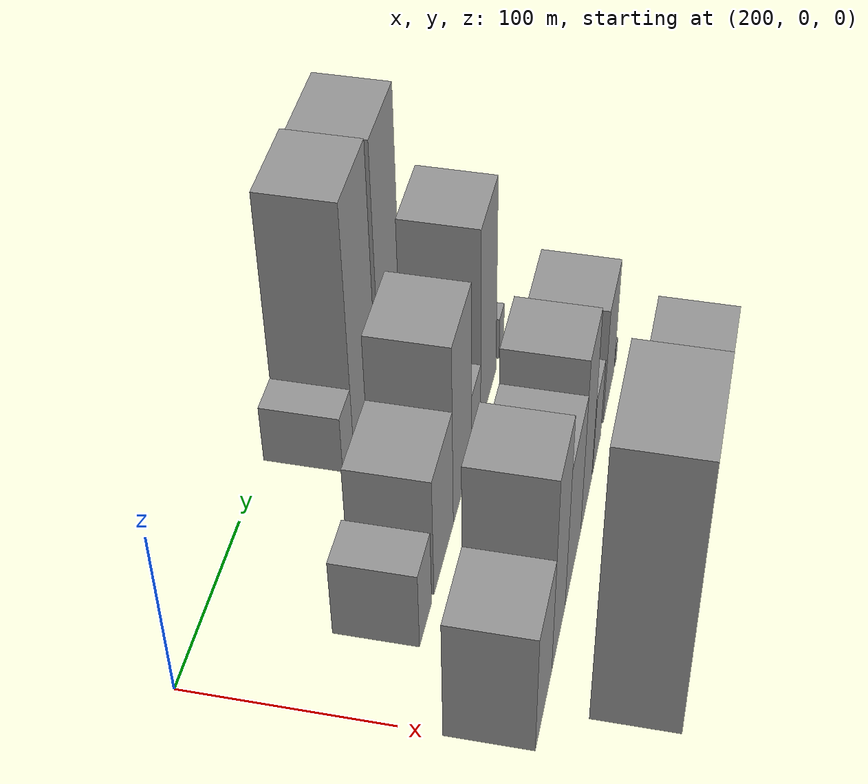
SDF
<sdf version="1.6">
 <world name="default">
  <model name="building_149">
   <static>1</static>
   <pose>220.0000 151.2144 0 0.000000 0.000000 0.000000</pose>
   <link name="link">
    <pose>0 0 18.00 0 0 0</pose>
    <collision name="collision"><geometry><box><size>40.0000 20.9111 36.0000</size></box></geometry></collision>
    <visual name="visual">
     <cast_shadows>0</cast_shadows>
     <geometry><box><size>40.0000 20.9111 36.0000</size></box></geometry>
     <material>
      <script>
       <uri>model://grey_wall/materials/scripts</uri>
       <uri>model://grey_wall/materials/textures</uri>
       <name>vrc/grey_wall</name>
      </script>
     </material>
    </visual>
   </link>
  </model>
  <model name="building_150">
   <static>1</static>
   <pose>220.0000 185.9614 0 0.000000 0.000000 0.000000</pose>
   <link name="link">
    <pose>0 0 75.00 0 0 0</pose>
    <collision name="collision"><geometry><box><size>40.0000 48.5829 150.0000</size></box></geometry></collision>
    <visual name="visual">
     <cast_shadows>0</cast_shadows>
     <geometry><box><size>40.0000 48.5829 150.0000</size></box></geometry>
     <material>
      <script>
       <uri>model://grey_wall/materials/scripts</uri>
       <uri>model://grey_wall/materials/textures</uri>
       <name>vrc/grey_wall</name>
      </script>
     </material>
    </visual>
   </link>
  </model>
  <model name="building_151">
   <static>1</static>
   <pose>220.0000 241.5914 0 0.000000 0.000000 0.000000</pose>
   <link name="link">
    <pose>0 0 72.00 0 0 0</pose>
    <collision name="collision"><geometry><box><size>40.0000 48.6770 144.0000</size></box></geometry></collision>
    <visual name="visual">
     <cast_shadows>0</cast_shadows>
     <geometry><box><size>40.0000 48.6770 144.0000</size></box></geometry>
     <material>
      <script>
       <uri>model://grey_wall/materials/scripts</uri>
       <uri>model://grey_wall/materials/textures</uri>
       <name>vrc/grey_wall</name>
      </script>
     </material>
    </visual>
   </link>
  </model>
  <model name="building_200">
   <static>1</static>
   <pose>280.0000 56.0909 0 0.000000 0.000000 0.000000</pose>
   <link name="link">
    <pose>0 0 24.00 0 0 0</pose>
    <collision name="collision"><geometry><box><size>40.0000 25.5975 48.0000</size></box></geometry></collision>
    <visual name="visual">
     <cast_shadows>0</cast_shadows>
     <geometry><box><size>40.0000 25.5975 48.0000</size></box></geometry>
     <material>
      <script>
       <uri>model://grey_wall/materials/scripts</uri>
       <uri>model://grey_wall/materials/textures</uri>
       <name>vrc/grey_wall</name>
      </script>
     </material>
    </visual>
   </link>
  </model>
  <model name="building_201">
   <static>1</static>
   <pose>280.0000 95.7626 0 0.000000 0.000000 0.000000</pose>
   <link name="link">
    <pose>0 0 37.50 0 0 0</pose>
    <collision name="collision"><geometry><box><size>40.0000 43.7458 75.0000</size></box></geometry></collision>
    <visual name="visual">
     <cast_shadows>0</cast_shadows>
     <geometry><box><size>40.0000 43.7458 75.0000</size></box></geometry>
     <material>
      <script>
       <uri>model://grey_wall/materials/scripts</uri>
       <uri>model://grey_wall/materials/textures</uri>
       <name>vrc/grey_wall</name>
      </script>
     </material>
    </visual>
   </link>
  </model>
  <model name="building_202">
   <static>1</static>
   <pose>280.0000 139.8098 0 0.000000 0.000000 0.000000</pose>
   <link name="link">
    <pose>0 0 57.00 0 0 0</pose>
    <collision name="collision"><geometry><box><size>40.0000 44.3487 114.0000</size></box></geometry></collision>
    <visual name="visual">
     <cast_shadows>0</cast_shadows>
     <geometry><box><size>40.0000 44.3487 114.0000</size></box></geometry>
     <material>
      <script>
       <uri>model://grey_wall/materials/scripts</uri>
       <uri>model://grey_wall/materials/textures</uri>
       <name>vrc/grey_wall</name>
      </script>
     </material>
    </visual>
   </link>
  </model>
  <model name="building_203">
   <static>1</static>
   <pose>280.0000 173.4415 0 0.000000 0.000000 0.000000</pose>
   <link name="link">
    <pose>0 0 21.00 0 0 0</pose>
    <collision name="collision"><geometry><box><size>40.0000 22.9148 42.0000</size></box></geometry></collision>
    <visual name="visual">
     <cast_shadows>0</cast_shadows>
     <geometry><box><size>40.0000 22.9148 42.0000</size></box></geometry>
     <material>
      <script>
       <uri>model://grey_wall/materials/scripts</uri>
       <uri>model://grey_wall/materials/textures</uri>
       <name>vrc/grey_wall</name>
      </script>
     </material>
    </visual>
   </link>
  </model>
  <model name="building_204">
   <static>1</static>
   <pose>280.0000 205.6495 0 0.000000 0.000000 0.000000</pose>
   <link name="link">
    <pose>0 0 63.00 0 0 0</pose>
    <collision name="collision"><geometry><box><size>40.0000 41.5011 126.0000</size></box></geometry></collision>
    <visual name="visual">
     <cast_shadows>0</cast_shadows>
     <geometry><box><size>40.0000 41.5011 126.0000</size></box></geometry>
     <material>
      <script>
       <uri>model://grey_wall/materials/scripts</uri>
       <uri>model://grey_wall/materials/textures</uri>
       <name>vrc/grey_wall</name>
      </script>
     </material>
    </visual>
   </link>
  </model>
  <model name="building_205">
   <static>1</static>
   <pose>280.0000 241.9253 0 0.000000 0.000000 0.000000</pose>
   <link name="link">
    <pose>0 0 13.50 0 0 0</pose>
    <collision name="collision"><geometry><box><size>40.0000 13.0503 27.0000</size></box></geometry></collision>
    <visual name="visual">
     <cast_shadows>0</cast_shadows>
     <geometry><box><size>40.0000 13.0503 27.0000</size></box></geometry>
     <material>
      <script>
       <uri>model://grey_wall/materials/scripts</uri>
       <uri>model://grey_wall/materials/textures</uri>
       <name>vrc/grey_wall</name>
      </script>
     </material>
    </visual>
   </link>
  </model>
  <model name="building_247">
   <static>1</static>
   <pose>340.0000 20.0560 0 0.000000 0.000000 0.000000</pose>
   <link name="link">
    <pose>0 0 37.50 0 0 0</pose>
    <collision name="collision"><geometry><box><size>40.0000 42.1358 75.0000</size></box></geometry></collision>
    <visual name="visual">
     <cast_shadows>0</cast_shadows>
     <geometry><box><size>40.0000 42.1358 75.0000</size></box></geometry>
     <material>
      <script>
       <uri>model://grey_wall/materials/scripts</uri>
       <uri>model://grey_wall/materials/textures</uri>
       <name>vrc/grey_wall</name>
      </script>
     </material>
    </visual>
   </link>
  </model>
  <model name="building_248">
   <static>1</static>
   <pose>340.0000 59.7834 0 0.000000 0.000000 0.000000</pose>
   <link name="link">
    <pose>0 0 61.50 0 0 0</pose>
    <collision name="collision"><geometry><box><size>40.0000 37.3188 123.0000</size></box></geometry></collision>
    <visual name="visual">
     <cast_shadows>0</cast_shadows>
     <geometry><box><size>40.0000 37.3188 123.0000</size></box></geometry>
     <material>
      <script>
       <uri>model://grey_wall/materials/scripts</uri>
       <uri>model://grey_wall/materials/textures</uri>
       <name>vrc/grey_wall</name>
      </script>
     </material>
    </visual>
   </link>
  </model>
  <model name="building_249">
   <static>1</static>
   <pose>340.0000 101.5035 0 0.000000 0.000000 0.000000</pose>
   <link name="link">
    <pose>0 0 45.00 0 0 0</pose>
    <collision name="collision"><geometry><box><size>40.0000 46.1215 90.0000</size></box></geometry></collision>
    <visual name="visual">
     <cast_shadows>0</cast_shadows>
     <geometry><box><size>40.0000 46.1215 90.0000</size></box></geometry>
     <material>
      <script>
       <uri>model://grey_wall/materials/scripts</uri>
       <uri>model://grey_wall/materials/textures</uri>
       <name>vrc/grey_wall</name>
      </script>
     </material>
    </visual>
   </link>
  </model>
  <model name="building_250">
   <static>1</static>
   <pose>340.0000 142.1750 0 0.000000 0.000000 0.000000</pose>
   <link name="link">
    <pose>0 0 55.50 0 0 0</pose>
    <collision name="collision"><geometry><box><size>40.0000 35.2214 111.0000</size></box></geometry></collision>
    <visual name="visual">
     <cast_shadows>0</cast_shadows>
     <geometry><box><size>40.0000 35.2214 111.0000</size></box></geometry>
     <material>
      <script>
       <uri>model://grey_wall/materials/scripts</uri>
       <uri>model://grey_wall/materials/textures</uri>
       <name>vrc/grey_wall</name>
      </script>
     </material>
    </visual>
   </link>
  </model>
  <model name="building_251">
   <static>1</static>
   <pose>340.0000 176.6803 0 0.000000 0.000000 0.000000</pose>
   <link name="link">
    <pose>0 0 25.50 0 0 0</pose>
    <collision name="collision"><geometry><box><size>40.0000 27.7892 51.0000</size></box></geometry></collision>
    <visual name="visual">
     <cast_shadows>0</cast_shadows>
     <geometry><box><size>40.0000 27.7892 51.0000</size></box></geometry>
     <material>
      <script>
       <uri>model://grey_wall/materials/scripts</uri>
       <uri>model://grey_wall/materials/textures</uri>
       <name>vrc/grey_wall</name>
      </script>
     </material>
    </visual>
   </link>
  </model>
  <model name="building_252">
   <static>1</static>
   <pose>340.0000 218.1808 0 0.000000 0.000000 0.000000</pose>
   <link name="link">
    <pose>0 0 37.50 0 0 0</pose>
    <collision name="collision"><geometry><box><size>40.0000 39.2118 75.0000</size></box></geometry></collision>
    <visual name="visual">
     <cast_shadows>0</cast_shadows>
     <geometry><box><size>40.0000 39.2118 75.0000</size></box></geometry>
     <material>
      <script>
       <uri>model://grey_wall/materials/scripts</uri>
       <uri>model://grey_wall/materials/textures</uri>
       <name>vrc/grey_wall</name>
      </script>
     </material>
    </visual>
   </link>
  </model>
  <model name="building_253">
   <static>1</static>
   <pose>340.0000 243.9106 0 0.000000 0.000000 0.000000</pose>
   <link name="link">
    <pose>0 0 7.50 0 0 0</pose>
    <collision name="collision"><geometry><box><size>40.0000 6.2478 15.0000</size></box></geometry></collision>
    <visual name="visual">
     <cast_shadows>0</cast_shadows>
     <geometry><box><size>40.0000 6.2478 15.0000</size></box></geometry>
     <material>
      <script>
       <uri>model://grey_wall/materials/scripts</uri>
       <uri>model://grey_wall/materials/textures</uri>
       <name>vrc/grey_wall</name>
      </script>
     </material>
    </visual>
   </link>
  </model>
  <model name="building_304">
   <static>1</static>
   <pose>400.0000 49.7442 0 0.000000 0.000000 0.000000</pose>
   <link name="link">
    <pose>0 0 84.00 0 0 0</pose>
    <collision name="collision"><geometry><box><size>40.0000 59.9798 168.0000</size></box></geometry></collision>
    <visual name="visual">
     <cast_shadows>0</cast_shadows>
     <geometry><box><size>40.0000 59.9798 168.0000</size></box></geometry>
     <material>
      <script>
       <uri>model://grey_wall/materials/scripts</uri>
       <uri>model://grey_wall/materials/textures</uri>
       <name>vrc/grey_wall</name>
      </script>
     </material>
    </visual>
   </link>
  </model>
  <model name="building_305">
   <static>1</static>
   <pose>400.0000 106.9279 0 0.000000 0.000000 0.000000</pose>
   <link name="link">
    <pose>0 0 36.00 0 0 0</pose>
    <collision name="collision"><geometry><box><size>40.0000 42.3877 72.0000</size></box></geometry></collision>
    <visual name="visual">
     <cast_shadows>0</cast_shadows>
     <geometry><box><size>40.0000 42.3877 72.0000</size></box></geometry>
     <material>
      <script>
       <uri>model://grey_wall/materials/scripts</uri>
       <uri>model://grey_wall/materials/textures</uri>
       <name>vrc/grey_wall</name>
      </script>
     </material>
    </visual>
   </link>
  </model>
  <model name="building_306">
   <static>1</static>
   <pose>400.0000 140.5176 0 0.000000 0.000000 0.000000</pose>
   <link name="link">
    <pose>0 0 24.00 0 0 0</pose>
    <collision name="collision"><geometry><box><size>40.0000 24.7916 48.0000</size></box></geometry></collision>
    <visual name="visual">
     <cast_shadows>0</cast_shadows>
     <geometry><box><size>40.0000 24.7916 48.0000</size></box></geometry>
     <material>
      <script>
       <uri>model://grey_wall/materials/scripts</uri>
       <uri>model://grey_wall/materials/textures</uri>
       <name>vrc/grey_wall</name>
      </script>
     </material>
    </visual>
   </link>
  </model>
  <model name="building_307">
   <static>1</static>
   <pose>400.0000 168.2863 0 0.000000 0.000000 0.000000</pose>
   <link name="link">
    <pose>0 0 27.00 0 0 0</pose>
    <collision name="collision"><geometry><box><size>40.0000 30.7459 54.0000</size></box></geometry></collision>
    <visual name="visual">
     <cast_shadows>0</cast_shadows>
     <geometry><box><size>40.0000 30.7459 54.0000</size></box></geometry>
     <material>
      <script>
       <uri>model://grey_wall/materials/scripts</uri>
       <uri>model://grey_wall/materials/textures</uri>
       <name>vrc/grey_wall</name>
      </script>
     </material>
    </visual>
   </link>
  </model>
  <model name="building_308">
   <static>1</static>
   <pose>400.0000 210.3996 0 0.000000 0.000000 0.000000</pose>
   <link name="link">
    <pose>0 0 31.50 0 0 0</pose>
    <collision name="collision"><geometry><box><size>40.0000 35.4806 63.0000</size></box></geometry></collision>
    <visual name="visual">
     <cast_shadows>0</cast_shadows>
     <geometry><box><size>40.0000 35.4806 63.0000</size></box></geometry>
     <material>
      <script>
       <uri>model://grey_wall/materials/scripts</uri>
       <uri>model://grey_wall/materials/textures</uri>
       <name>vrc/grey_wall</name>
      </script>
     </material>
    </visual>
   </link>
  </model>
 </world>
</sdf>
